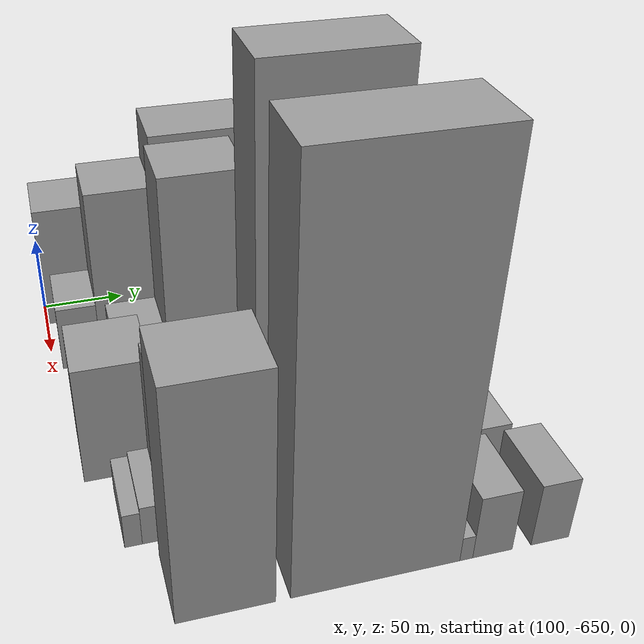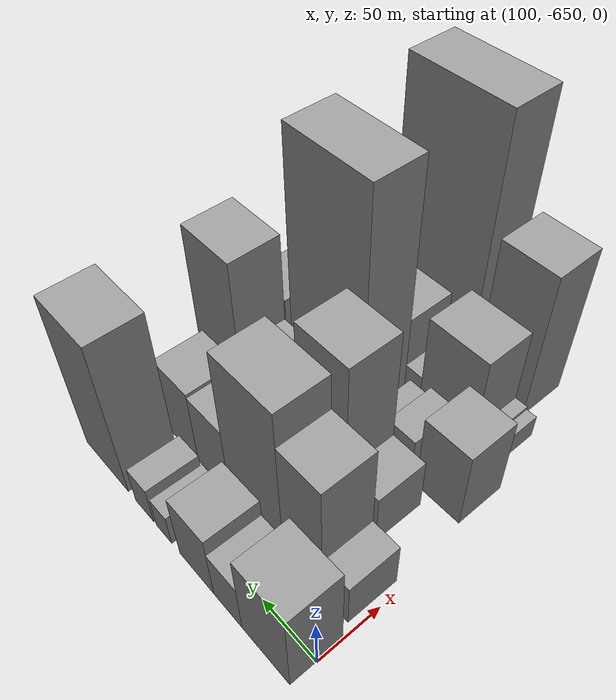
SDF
<sdf version="1.6">
 <world name="default">
  <model name="building_3">
   <static>1</static>
   <pose>100.0000 -627.5946 0 0.000000 0.000000 0.000000</pose>
   <link name="link">
    <pose>0 0 40.50 0 0 0</pose>
    <collision name="collision"><geometry><box><size>40.0000 44.3313 81.0000</size></box></geometry></collision>
    <visual name="visual">
     <cast_shadows>0</cast_shadows>
     <geometry><box><size>40.0000 44.3313 81.0000</size></box></geometry>
     <material>
      <script>
       <uri>model://grey_wall/materials/scripts</uri>
       <uri>model://grey_wall/materials/textures</uri>
       <name>vrc/grey_wall</name>
      </script>
     </material>
    </visual>
   </link>
  </model>
  <model name="building_4">
   <static>1</static>
   <pose>100.0000 -591.4456 0 0.000000 0.000000 0.000000</pose>
   <link name="link">
    <pose>0 0 24.00 0 0 0</pose>
    <collision name="collision"><geometry><box><size>40.0000 27.9667 48.0000</size></box></geometry></collision>
    <visual name="visual">
     <cast_shadows>0</cast_shadows>
     <geometry><box><size>40.0000 27.9667 48.0000</size></box></geometry>
     <material>
      <script>
       <uri>model://grey_wall/materials/scripts</uri>
       <uri>model://grey_wall/materials/textures</uri>
       <name>vrc/grey_wall</name>
      </script>
     </material>
    </visual>
   </link>
  </model>
  <model name="building_5">
   <static>1</static>
   <pose>100.0000 -559.4655 0 0.000000 0.000000 0.000000</pose>
   <link name="link">
    <pose>0 0 31.50 0 0 0</pose>
    <collision name="collision"><geometry><box><size>40.0000 35.9933 63.0000</size></box></geometry></collision>
    <visual name="visual">
     <cast_shadows>0</cast_shadows>
     <geometry><box><size>40.0000 35.9933 63.0000</size></box></geometry>
     <material>
      <script>
       <uri>model://grey_wall/materials/scripts</uri>
       <uri>model://grey_wall/materials/textures</uri>
       <name>vrc/grey_wall</name>
      </script>
     </material>
    </visual>
   </link>
  </model>
  <model name="building_6">
   <static>1</static>
   <pose>100.0000 -523.7106 0 0.000000 0.000000 0.000000</pose>
   <link name="link">
    <pose>0 0 15.00 0 0 0</pose>
    <collision name="collision"><geometry><box><size>40.0000 17.5167 30.0000</size></box></geometry></collision>
    <visual name="visual">
     <cast_shadows>0</cast_shadows>
     <geometry><box><size>40.0000 17.5167 30.0000</size></box></geometry>
     <material>
      <script>
       <uri>model://grey_wall/materials/scripts</uri>
       <uri>model://grey_wall/materials/textures</uri>
       <name>vrc/grey_wall</name>
      </script>
     </material>
    </visual>
   </link>
  </model>
  <model name="building_7">
   <static>1</static>
   <pose>100.0000 -501.3725 0 0.000000 0.000000 0.000000</pose>
   <link name="link">
    <pose>0 0 18.00 0 0 0</pose>
    <collision name="collision"><geometry><box><size>40.0000 21.1595 36.0000</size></box></geometry></collision>
    <visual name="visual">
     <cast_shadows>0</cast_shadows>
     <geometry><box><size>40.0000 21.1595 36.0000</size></box></geometry>
     <material>
      <script>
       <uri>model://grey_wall/materials/scripts</uri>
       <uri>model://grey_wall/materials/textures</uri>
       <name>vrc/grey_wall</name>
      </script>
     </material>
    </visual>
   </link>
  </model>
  <model name="building_8">
   <static>1</static>
   <pose>100.0000 -455.3490 0 0.000000 0.000000 0.000000</pose>
   <link name="link">
    <pose>0 0 72.00 0 0 0</pose>
    <collision name="collision"><geometry><box><size>40.0000 52.8873 144.0000</size></box></geometry></collision>
    <visual name="visual">
     <cast_shadows>0</cast_shadows>
     <geometry><box><size>40.0000 52.8873 144.0000</size></box></geometry>
     <material>
      <script>
       <uri>model://grey_wall/materials/scripts</uri>
       <uri>model://grey_wall/materials/textures</uri>
       <name>vrc/grey_wall</name>
      </script>
     </material>
    </visual>
   </link>
  </model>
  <model name="building_55">
   <static>1</static>
   <pose>149.0000 -632.7382 0 0.000000 0.000000 0.000000</pose>
   <link name="link">
    <pose>0 0 21.00 0 0 0</pose>
    <collision name="collision"><geometry><box><size>40.0000 23.1619 42.0000</size></box></geometry></collision>
    <visual name="visual">
     <cast_shadows>0</cast_shadows>
     <geometry><box><size>40.0000 23.1619 42.0000</size></box></geometry>
     <material>
      <script>
       <uri>model://grey_wall/materials/scripts</uri>
       <uri>model://grey_wall/materials/textures</uri>
       <name>vrc/grey_wall</name>
      </script>
     </material>
    </visual>
   </link>
  </model>
  <model name="building_56">
   <static>1</static>
   <pose>149.0000 -602.5373 0 0.000000 0.000000 0.000000</pose>
   <link name="link">
    <pose>0 0 57.00 0 0 0</pose>
    <collision name="collision"><geometry><box><size>40.0000 37.2399 114.0000</size></box></geometry></collision>
    <visual name="visual">
     <cast_shadows>0</cast_shadows>
     <geometry><box><size>40.0000 37.2399 114.0000</size></box></geometry>
     <material>
      <script>
       <uri>model://grey_wall/materials/scripts</uri>
       <uri>model://grey_wall/materials/textures</uri>
       <name>vrc/grey_wall</name>
      </script>
     </material>
    </visual>
   </link>
  </model>
  <model name="building_57">
   <static>1</static>
   <pose>149.0000 -556.0575 0 0.000000 0.000000 0.000000</pose>
   <link name="link">
    <pose>0 0 72.00 0 0 0</pose>
    <collision name="collision"><geometry><box><size>40.0000 55.7196 144.0000</size></box></geometry></collision>
    <visual name="visual">
     <cast_shadows>0</cast_shadows>
     <geometry><box><size>40.0000 55.7196 144.0000</size></box></geometry>
     <material>
      <script>
       <uri>model://grey_wall/materials/scripts</uri>
       <uri>model://grey_wall/materials/textures</uri>
       <name>vrc/grey_wall</name>
      </script>
     </material>
    </visual>
   </link>
  </model>
  <model name="building_58">
   <static>1</static>
   <pose>149.0000 -510.4276 0 0.000000 0.000000 0.000000</pose>
   <link name="link">
    <pose>0 0 34.50 0 0 0</pose>
    <collision name="collision"><geometry><box><size>40.0000 35.5402 69.0000</size></box></geometry></collision>
    <visual name="visual">
     <cast_shadows>0</cast_shadows>
     <geometry><box><size>40.0000 35.5402 69.0000</size></box></geometry>
     <material>
      <script>
       <uri>model://grey_wall/materials/scripts</uri>
       <uri>model://grey_wall/materials/textures</uri>
       <name>vrc/grey_wall</name>
      </script>
     </material>
    </visual>
   </link>
  </model>
  <model name="building_59">
   <static>1</static>
   <pose>149.0000 -473.8199 0 0.000000 0.000000 0.000000</pose>
   <link name="link">
    <pose>0 0 36.00 0 0 0</pose>
    <collision name="collision"><geometry><box><size>40.0000 37.6751 72.0000</size></box></geometry></collision>
    <visual name="visual">
     <cast_shadows>0</cast_shadows>
     <geometry><box><size>40.0000 37.6751 72.0000</size></box></geometry>
     <material>
      <script>
       <uri>model://grey_wall/materials/scripts</uri>
       <uri>model://grey_wall/materials/textures</uri>
       <name>vrc/grey_wall</name>
      </script>
     </material>
    </visual>
   </link>
  </model>
  <model name="building_105">
   <static>1</static>
   <pose>198.0000 -601.8614 0 0.000000 0.000000 0.000000</pose>
   <link name="link">
    <pose>0 0 24.00 0 0 0</pose>
    <collision name="collision"><geometry><box><size>40.0000 28.6979 48.0000</size></box></geometry></collision>
    <visual name="visual">
     <cast_shadows>0</cast_shadows>
     <geometry><box><size>40.0000 28.6979 48.0000</size></box></geometry>
     <material>
      <script>
       <uri>model://grey_wall/materials/scripts</uri>
       <uri>model://grey_wall/materials/textures</uri>
       <name>vrc/grey_wall</name>
      </script>
     </material>
    </visual>
   </link>
  </model>
  <model name="building_106">
   <static>1</static>
   <pose>198.0000 -564.6860 0 0.000000 0.000000 0.000000</pose>
   <link name="link">
    <pose>0 0 72.00 0 0 0</pose>
    <collision name="collision"><geometry><box><size>40.0000 45.6528 144.0000</size></box></geometry></collision>
    <visual name="visual">
     <cast_shadows>0</cast_shadows>
     <geometry><box><size>40.0000 45.6528 144.0000</size></box></geometry>
     <material>
      <script>
       <uri>model://grey_wall/materials/scripts</uri>
       <uri>model://grey_wall/materials/textures</uri>
       <name>vrc/grey_wall</name>
      </script>
     </material>
    </visual>
   </link>
  </model>
  <model name="building_107">
   <static>1</static>
   <pose>198.0000 -526.8649 0 0.000000 0.000000 0.000000</pose>
   <link name="link">
    <pose>0 0 10.50 0 0 0</pose>
    <collision name="collision"><geometry><box><size>40.0000 9.9894 21.0000</size></box></geometry></collision>
    <visual name="visual">
     <cast_shadows>0</cast_shadows>
     <geometry><box><size>40.0000 9.9894 21.0000</size></box></geometry>
     <material>
      <script>
       <uri>model://grey_wall/materials/scripts</uri>
       <uri>model://grey_wall/materials/textures</uri>
       <name>vrc/grey_wall</name>
      </script>
     </material>
    </visual>
   </link>
  </model>
  <model name="building_108">
   <static>1</static>
   <pose>198.0000 -501.2645 0 0.000000 0.000000 0.000000</pose>
   <link name="link">
    <pose>0 0 34.50 0 0 0</pose>
    <collision name="collision"><geometry><box><size>40.0000 41.2113 69.0000</size></box></geometry></collision>
    <visual name="visual">
     <cast_shadows>0</cast_shadows>
     <geometry><box><size>40.0000 41.2113 69.0000</size></box></geometry>
     <material>
      <script>
       <uri>model://grey_wall/materials/scripts</uri>
       <uri>model://grey_wall/materials/textures</uri>
       <name>vrc/grey_wall</name>
      </script>
     </material>
    </visual>
   </link>
  </model>
  <model name="building_109">
   <static>1</static>
   <pose>198.0000 -456.5820 0 0.000000 0.000000 0.000000</pose>
   <link name="link">
    <pose>0 0 72.00 0 0 0</pose>
    <collision name="collision"><geometry><box><size>40.0000 48.1538 144.0000</size></box></geometry></collision>
    <visual name="visual">
     <cast_shadows>0</cast_shadows>
     <geometry><box><size>40.0000 48.1538 144.0000</size></box></geometry>
     <material>
      <script>
       <uri>model://grey_wall/materials/scripts</uri>
       <uri>model://grey_wall/materials/textures</uri>
       <name>vrc/grey_wall</name>
      </script>
     </material>
    </visual>
   </link>
  </model>
  <model name="building_146">
   <static>1</static>
   <pose>247.0000 -622.9275 0 0.000000 0.000000 0.000000</pose>
   <link name="link">
    <pose>0 0 36.00 0 0 0</pose>
    <collision name="collision"><geometry><box><size>40.0000 38.7273 72.0000</size></box></geometry></collision>
    <visual name="visual">
     <cast_shadows>0</cast_shadows>
     <geometry><box><size>40.0000 38.7273 72.0000</size></box></geometry>
     <material>
      <script>
       <uri>model://grey_wall/materials/scripts</uri>
       <uri>model://grey_wall/materials/textures</uri>
       <name>vrc/grey_wall</name>
      </script>
     </material>
    </visual>
   </link>
  </model>
  <model name="building_147">
   <static>1</static>
   <pose>247.0000 -586.0438 0 0.000000 0.000000 0.000000</pose>
   <link name="link">
    <pose>0 0 21.00 0 0 0</pose>
    <collision name="collision"><geometry><box><size>40.0000 25.0402 42.0000</size></box></geometry></collision>
    <visual name="visual">
     <cast_shadows>0</cast_shadows>
     <geometry><box><size>40.0000 25.0402 42.0000</size></box></geometry>
     <material>
      <script>
       <uri>model://grey_wall/materials/scripts</uri>
       <uri>model://grey_wall/materials/textures</uri>
       <name>vrc/grey_wall</name>
      </script>
     </material>
    </visual>
   </link>
  </model>
  <model name="building_148">
   <static>1</static>
   <pose>247.0000 -564.2746 0 0.000000 0.000000 0.000000</pose>
   <link name="link">
    <pose>0 0 16.50 0 0 0</pose>
    <collision name="collision"><geometry><box><size>40.0000 18.4982 33.0000</size></box></geometry></collision>
    <visual name="visual">
     <cast_shadows>0</cast_shadows>
     <geometry><box><size>40.0000 18.4982 33.0000</size></box></geometry>
     <material>
      <script>
       <uri>model://grey_wall/materials/scripts</uri>
       <uri>model://grey_wall/materials/textures</uri>
       <name>vrc/grey_wall</name>
      </script>
     </material>
    </visual>
   </link>
  </model>
  <model name="building_149">
   <static>1</static>
   <pose>247.0000 -512.9525 0 0.000000 0.000000 0.000000</pose>
   <link name="link">
    <pose>0 0 109.50 0 0 0</pose>
    <collision name="collision"><geometry><box><size>40.0000 74.1459 219.0000</size></box></geometry></collision>
    <visual name="visual">
     <cast_shadows>0</cast_shadows>
     <geometry><box><size>40.0000 74.1459 219.0000</size></box></geometry>
     <material>
      <script>
       <uri>model://grey_wall/materials/scripts</uri>
       <uri>model://grey_wall/materials/textures</uri>
       <name>vrc/grey_wall</name>
      </script>
     </material>
    </visual>
   </link>
  </model>
  <model name="building_150">
   <static>1</static>
   <pose>247.0000 -450.2749 0 0.000000 0.000000 0.000000</pose>
   <link name="link">
    <pose>0 0 36.00 0 0 0</pose>
    <collision name="collision"><geometry><box><size>40.0000 39.2093 72.0000</size></box></geometry></collision>
    <visual name="visual">
     <cast_shadows>0</cast_shadows>
     <geometry><box><size>40.0000 39.2093 72.0000</size></box></geometry>
     <material>
      <script>
       <uri>model://grey_wall/materials/scripts</uri>
       <uri>model://grey_wall/materials/textures</uri>
       <name>vrc/grey_wall</name>
      </script>
     </material>
    </visual>
   </link>
  </model>
  <model name="building_151">
   <static>1</static>
   <pose>247.0000 -424.0492 0 0.000000 0.000000 0.000000</pose>
   <link name="link">
    <pose>0 0 13.50 0 0 0</pose>
    <collision name="collision"><geometry><box><size>40.0000 13.2422 27.0000</size></box></geometry></collision>
    <visual name="visual">
     <cast_shadows>0</cast_shadows>
     <geometry><box><size>40.0000 13.2422 27.0000</size></box></geometry>
     <material>
      <script>
       <uri>model://grey_wall/materials/scripts</uri>
       <uri>model://grey_wall/materials/textures</uri>
       <name>vrc/grey_wall</name>
      </script>
     </material>
    </visual>
   </link>
  </model>
  <model name="building_196">
   <static>1</static>
   <pose>296.0000 -624.0342 0 0.000000 0.000000 0.000000</pose>
   <link name="link">
    <pose>0 0 10.50 0 0 0</pose>
    <collision name="collision"><geometry><box><size>40.0000 8.6097 21.0000</size></box></geometry></collision>
    <visual name="visual">
     <cast_shadows>0</cast_shadows>
     <geometry><box><size>40.0000 8.6097 21.0000</size></box></geometry>
     <material>
      <script>
       <uri>model://grey_wall/materials/scripts</uri>
       <uri>model://grey_wall/materials/textures</uri>
       <name>vrc/grey_wall</name>
      </script>
     </material>
    </visual>
   </link>
  </model>
  <model name="building_197">
   <static>1</static>
   <pose>296.0000 -614.4387 0 0.000000 0.000000 0.000000</pose>
   <link name="link">
    <pose>0 0 12.00 0 0 0</pose>
    <collision name="collision"><geometry><box><size>40.0000 10.5815 24.0000</size></box></geometry></collision>
    <visual name="visual">
     <cast_shadows>0</cast_shadows>
     <geometry><box><size>40.0000 10.5815 24.0000</size></box></geometry>
     <material>
      <script>
       <uri>model://grey_wall/materials/scripts</uri>
       <uri>model://grey_wall/materials/textures</uri>
       <name>vrc/grey_wall</name>
      </script>
     </material>
    </visual>
   </link>
  </model>
  <model name="building_198">
   <static>1</static>
   <pose>296.0000 -583.4193 0 0.000000 0.000000 0.000000</pose>
   <link name="link">
    <pose>0 0 45.00 0 0 0</pose>
    <collision name="collision"><geometry><box><size>40.0000 51.4572 90.0000</size></box></geometry></collision>
    <visual name="visual">
     <cast_shadows>0</cast_shadows>
     <geometry><box><size>40.0000 51.4572 90.0000</size></box></geometry>
     <material>
      <script>
       <uri>model://grey_wall/materials/scripts</uri>
       <uri>model://grey_wall/materials/textures</uri>
       <name>vrc/grey_wall</name>
      </script>
     </material>
    </visual>
   </link>
  </model>
  <model name="building_199">
   <static>1</static>
   <pose>296.0000 -549.8149 0 0.000000 0.000000 0.000000</pose>
   <link name="link">
    <pose>0 0 15.00 0 0 0</pose>
    <collision name="collision"><geometry><box><size>40.0000 15.7516 30.0000</size></box></geometry></collision>
    <visual name="visual">
     <cast_shadows>0</cast_shadows>
     <geometry><box><size>40.0000 15.7516 30.0000</size></box></geometry>
     <material>
      <script>
       <uri>model://grey_wall/materials/scripts</uri>
       <uri>model://grey_wall/materials/textures</uri>
       <name>vrc/grey_wall</name>
      </script>
     </material>
    </visual>
   </link>
  </model>
  <model name="building_200">
   <static>1</static>
   <pose>296.0000 -522.6217 0 0.000000 0.000000 0.000000</pose>
   <link name="link">
    <pose>0 0 37.50 0 0 0</pose>
    <collision name="collision"><geometry><box><size>40.0000 38.6346 75.0000</size></box></geometry></collision>
    <visual name="visual">
     <cast_shadows>0</cast_shadows>
     <geometry><box><size>40.0000 38.6346 75.0000</size></box></geometry>
     <material>
      <script>
       <uri>model://grey_wall/materials/scripts</uri>
       <uri>model://grey_wall/materials/textures</uri>
       <name>vrc/grey_wall</name>
      </script>
     </material>
    </visual>
   </link>
  </model>
  <model name="building_201">
   <static>1</static>
   <pose>296.0000 -484.4059 0 0.000000 0.000000 0.000000</pose>
   <link name="link">
    <pose>0 0 33.00 0 0 0</pose>
    <collision name="collision"><geometry><box><size>40.0000 37.7970 66.0000</size></box></geometry></collision>
    <visual name="visual">
     <cast_shadows>0</cast_shadows>
     <geometry><box><size>40.0000 37.7970 66.0000</size></box></geometry>
     <material>
      <script>
       <uri>model://grey_wall/materials/scripts</uri>
       <uri>model://grey_wall/materials/textures</uri>
       <name>vrc/grey_wall</name>
      </script>
     </material>
    </visual>
   </link>
  </model>
  <model name="building_202">
   <static>1</static>
   <pose>296.0000 -460.0622 0 0.000000 0.000000 0.000000</pose>
   <link name="link">
    <pose>0 0 12.00 0 0 0</pose>
    <collision name="collision"><geometry><box><size>40.0000 10.8905 24.0000</size></box></geometry></collision>
    <visual name="visual">
     <cast_shadows>0</cast_shadows>
     <geometry><box><size>40.0000 10.8905 24.0000</size></box></geometry>
     <material>
      <script>
       <uri>model://grey_wall/materials/scripts</uri>
       <uri>model://grey_wall/materials/textures</uri>
       <name>vrc/grey_wall</name>
      </script>
     </material>
    </visual>
   </link>
  </model>
  <model name="building_203">
   <static>1</static>
   <pose>296.0000 -437.1054 0 0.000000 0.000000 0.000000</pose>
   <link name="link">
    <pose>0 0 16.50 0 0 0</pose>
    <collision name="collision"><geometry><box><size>40.0000 17.0231 33.0000</size></box></geometry></collision>
    <visual name="visual">
     <cast_shadows>0</cast_shadows>
     <geometry><box><size>40.0000 17.0231 33.0000</size></box></geometry>
     <material>
      <script>
       <uri>model://grey_wall/materials/scripts</uri>
       <uri>model://grey_wall/materials/textures</uri>
       <name>vrc/grey_wall</name>
      </script>
     </material>
    </visual>
   </link>
  </model>
  <model name="building_246">
   <static>1</static>
   <pose>345.0000 -589.8190 0 0.000000 0.000000 0.000000</pose>
   <link name="link">
    <pose>0 0 67.50 0 0 0</pose>
    <collision name="collision"><geometry><box><size>40.0000 46.4939 135.0000</size></box></geometry></collision>
    <visual name="visual">
     <cast_shadows>0</cast_shadows>
     <geometry><box><size>40.0000 46.4939 135.0000</size></box></geometry>
     <material>
      <script>
       <uri>model://grey_wall/materials/scripts</uri>
       <uri>model://grey_wall/materials/textures</uri>
       <name>vrc/grey_wall</name>
      </script>
     </material>
    </visual>
   </link>
  </model>
  <model name="building_247">
   <static>1</static>
   <pose>345.0000 -517.8174 0 0.000000 0.000000 0.000000</pose>
   <link name="link">
    <pose>0 0 112.50 0 0 0</pose>
    <collision name="collision"><geometry><box><size>40.0000 83.5094 225.0000</size></box></geometry></collision>
    <visual name="visual">
     <cast_shadows>0</cast_shadows>
     <geometry><box><size>40.0000 83.5094 225.0000</size></box></geometry>
     <material>
      <script>
       <uri>model://grey_wall/materials/scripts</uri>
       <uri>model://grey_wall/materials/textures</uri>
       <name>vrc/grey_wall</name>
      </script>
     </material>
    </visual>
   </link>
  </model>
  <model name="building_248">
   <static>1</static>
   <pose>345.0000 -472.7428 0 0.000000 0.000000 0.000000</pose>
   <link name="link">
    <pose>0 0 7.50 0 0 0</pose>
    <collision name="collision"><geometry><box><size>40.0000 6.6399 15.0000</size></box></geometry></collision>
    <visual name="visual">
     <cast_shadows>0</cast_shadows>
     <geometry><box><size>40.0000 6.6399 15.0000</size></box></geometry>
     <material>
      <script>
       <uri>model://grey_wall/materials/scripts</uri>
       <uri>model://grey_wall/materials/textures</uri>
       <name>vrc/grey_wall</name>
      </script>
     </material>
    </visual>
   </link>
  </model>
  <model name="building_249">
   <static>1</static>
   <pose>345.0000 -459.1075 0 0.000000 0.000000 0.000000</pose>
   <link name="link">
    <pose>0 0 19.50 0 0 0</pose>
    <collision name="collision"><geometry><box><size>40.0000 20.6308 39.0000</size></box></geometry></collision>
    <visual name="visual">
     <cast_shadows>0</cast_shadows>
     <geometry><box><size>40.0000 20.6308 39.0000</size></box></geometry>
     <material>
      <script>
       <uri>model://grey_wall/materials/scripts</uri>
       <uri>model://grey_wall/materials/textures</uri>
       <name>vrc/grey_wall</name>
      </script>
     </material>
    </visual>
   </link>
  </model>
  <model name="building_250">
   <static>1</static>
   <pose>345.0000 -428.7388 0 0.000000 0.000000 0.000000</pose>
   <link name="link">
    <pose>0 0 19.50 0 0 0</pose>
    <collision name="collision"><geometry><box><size>40.0000 20.1066 39.0000</size></box></geometry></collision>
    <visual name="visual">
     <cast_shadows>0</cast_shadows>
     <geometry><box><size>40.0000 20.1066 39.0000</size></box></geometry>
     <material>
      <script>
       <uri>model://grey_wall/materials/scripts</uri>
       <uri>model://grey_wall/materials/textures</uri>
       <name>vrc/grey_wall</name>
      </script>
     </material>
    </visual>
   </link>
  </model>
 </world>
</sdf>
